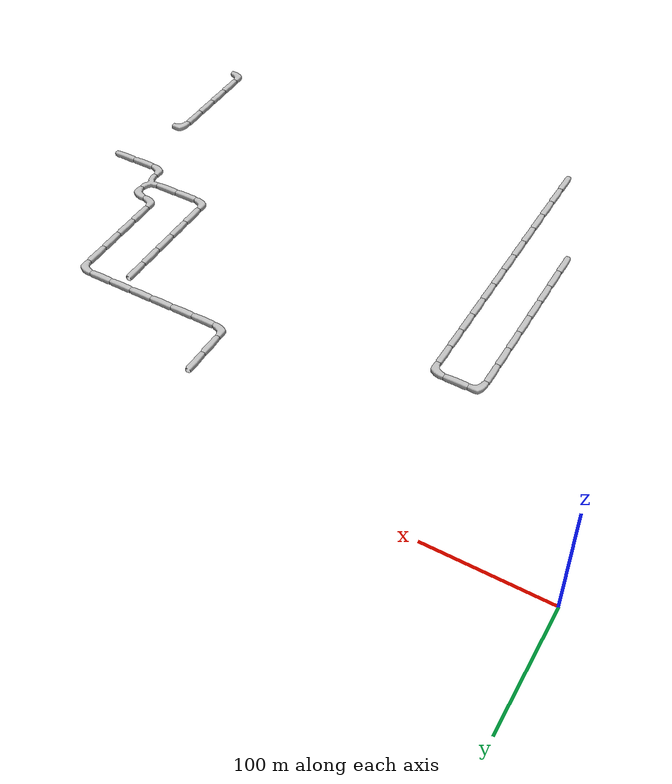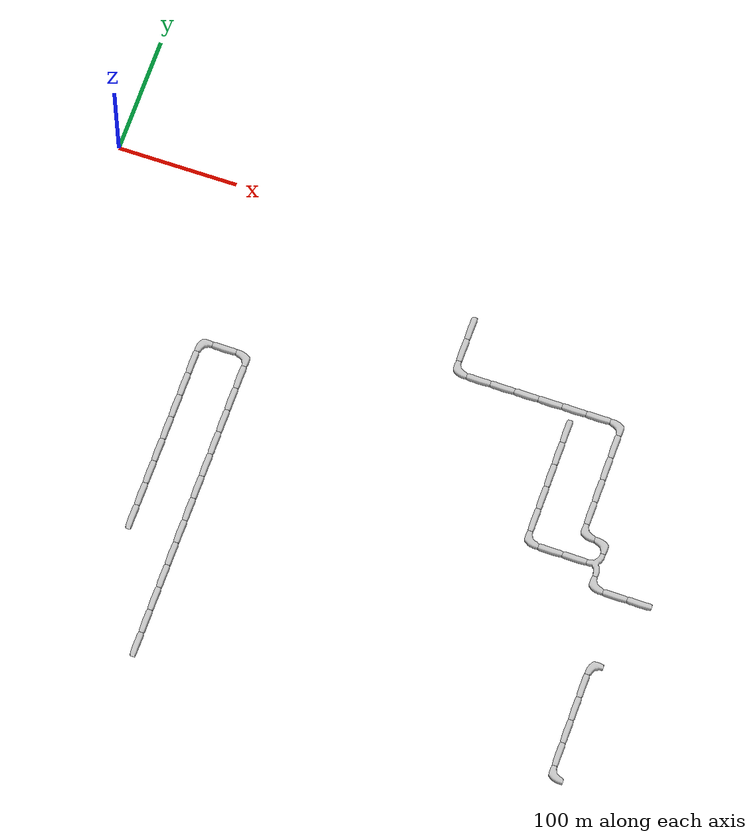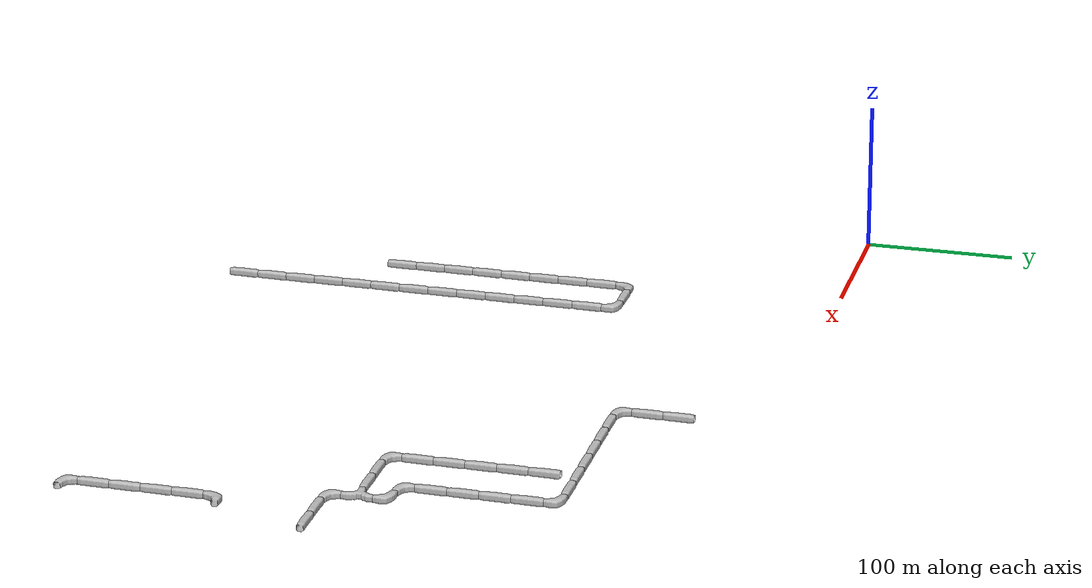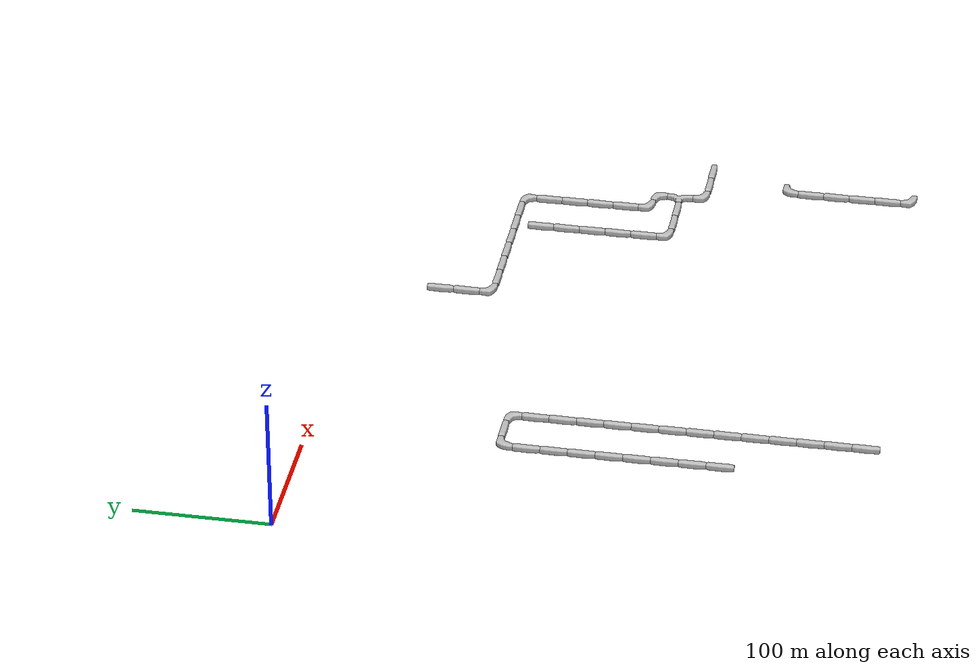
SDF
<sdf version="1.6">
 <world name="cave_32000_2">
  <include>
   <static>true</static>
   <name>cave_16_-3</name>
   <pose>320 -60 0 0 0 0.0</pose>
   <uri>model://cave_straight_20m</uri>
  </include>
  <include>
   <static>true</static>
   <name>cave_16_-4</name>
   <pose>320 -80 0 0 0 0.0</pose>
   <uri>model://cave_straight_20m</uri>
  </include>
  <include>
   <static>true</static>
   <name>cave_16_-5</name>
   <pose>320 -100 0 0 0 0.0</pose>
   <uri>model://cave_L_20m</uri>
  </include>
  <include>
   <static>true</static>
   <name>cave_17_-5</name>
   <pose>340 -100 0 0 0 1.5707963267948966</pose>
   <uri>model://cave_straight_20m</uri>
  </include>
  <include>
   <static>true</static>
   <name>cave_18_-5</name>
   <pose>360 -100 0 0 0 1.5707963267948966</pose>
   <uri>model://cave_straight_20m</uri>
  </include>
  <include>
   <static>true</static>
   <name>cave_19_-5</name>
   <pose>380 -100 0 0 0 1.5707963267948966</pose>
   <uri>model://cave_straight_20m</uri>
  </include>
  <include>
   <static>true</static>
   <name>cave_20_-5</name>
   <pose>400 -100 0 0 0 1.5707963267948966</pose>
   <uri>model://cave_straight_20m</uri>
  </include>
  <include>
   <static>true</static>
   <name>cave_21_-5</name>
   <pose>420 -100 0 0 0 1.5707963267948966</pose>
   <uri>model://cave_straight_20m</uri>
  </include>
  <include>
   <static>true</static>
   <name>cave_22_-5</name>
   <pose>440 -100 0 0 0 1.5707963267948966</pose>
   <uri>model://cave_straight_20m</uri>
  </include>
  <include>
   <static>true</static>
   <name>cave_23_-5</name>
   <pose>460 -100 0 0 0 3.141592653589793</pose>
   <uri>model://cave_L_20m</uri>
  </include>
  <include>
   <static>true</static>
   <name>cave_23_-6</name>
   <pose>460 -120 0 0 0 0.0</pose>
   <uri>model://cave_straight_20m</uri>
  </include>
  <include>
   <static>true</static>
   <name>cave_23_-7</name>
   <pose>460 -140 0 0 0 0.0</pose>
   <uri>model://cave_straight_20m</uri>
  </include>
  <include>
   <static>true</static>
   <name>cave_23_-8</name>
   <pose>460 -160 0 0 0 0.0</pose>
   <uri>model://cave_straight_20m</uri>
  </include>
  <include>
   <static>true</static>
   <name>cave_23_-9</name>
   <pose>460 -180 0 0 0 0.0</pose>
   <uri>model://cave_straight_20m</uri>
  </include>
  <include>
   <static>true</static>
   <name>cave_23_-10</name>
   <pose>460 -200 0 0 0 0.0</pose>
   <uri>model://cave_L_20m</uri>
  </include>
  <include>
   <static>true</static>
   <name>cave_24_-10</name>
   <pose>480 -200 0 0 0 3.141592653589793</pose>
   <uri>model://cave_L_20m</uri>
  </include>
  <include>
   <static>true</static>
   <name>cave_24_-11</name>
   <pose>480 -220 0 0 0 1.5707963267948966</pose>
   <uri>model://cave_3way_20m</uri>
  </include>
  <include>
   <static>true</static>
   <name>cave_24_-12</name>
   <pose>480 -240 0 0 0 0.0</pose>
   <uri>model://cave_L_20m</uri>
  </include>
  <include>
   <static>true</static>
   <name>cave_25_-12</name>
   <pose>500 -240 0 0 0 1.5707963267948966</pose>
   <uri>model://cave_straight_20m</uri>
  </include>
  <include>
   <static>true</static>
   <name>cave_26_-12</name>
   <pose>520 -240 0 0 0 1.5707963267948966</pose>
   <uri>model://cave_straight_20m</uri>
  </include>
  <include>
   <static>true</static>
   <name>cave_25_-20</name>
   <pose>500 -400 0 0 0 0.0</pose>
   <uri>model://cave_L_20m</uri>
  </include>
  <include>
   <static>true</static>
   <name>cave_25_-19</name>
   <pose>500 -380 0 0 0 0.0</pose>
   <uri>model://cave_straight_20m</uri>
  </include>
  <include>
   <static>true</static>
   <name>cave_25_-18</name>
   <pose>500 -360 0 0 0 0.0</pose>
   <uri>model://cave_straight_20m</uri>
  </include>
  <include>
   <static>true</static>
   <name>cave_25_-17</name>
   <pose>500 -340 0 0 0 0.0</pose>
   <uri>model://cave_straight_20m</uri>
  </include>
  <include>
   <static>true</static>
   <name>cave_25_-16</name>
   <pose>500 -320 0 0 0 0.0</pose>
   <uri>model://cave_straight_20m</uri>
  </include>
  <include>
   <static>true</static>
   <name>cave_25_-15</name>
   <pose>500 -300 0 0 0 -1.5707963267948966</pose>
   <uri>model://cave_L_20m</uri>
  </include>
  <include>
   <static>true</static>
   <name>cave_23_-11</name>
   <pose>460 -220 0 0 0 1.5707963267948966</pose>
   <uri>model://cave_straight_20m</uri>
  </include>
  <include>
   <static>true</static>
   <name>cave_22_-11</name>
   <pose>440 -220 0 0 0 1.5707963267948966</pose>
   <uri>model://cave_straight_20m</uri>
  </include>
  <include>
   <static>true</static>
   <name>cave_21_-11</name>
   <pose>420 -220 0 0 0 0.0</pose>
   <uri>model://cave_L_20m</uri>
  </include>
  <include>
   <static>true</static>
   <name>cave_21_-10</name>
   <pose>420 -200 0 0 0 0.0</pose>
   <uri>model://cave_straight_20m</uri>
  </include>
  <include>
   <static>true</static>
   <name>cave_21_-9</name>
   <pose>420 -180 0 0 0 0.0</pose>
   <uri>model://cave_straight_20m</uri>
  </include>
  <include>
   <static>true</static>
   <name>cave_21_-8</name>
   <pose>420 -160 0 0 0 0.0</pose>
   <uri>model://cave_straight_20m</uri>
  </include>
  <include>
   <static>true</static>
   <name>cave_21_-7</name>
   <pose>420 -140 0 0 0 0.0</pose>
   <uri>model://cave_straight_20m</uri>
  </include>
  <include>
   <static>true</static>
   <name>cave_21_-6</name>
   <pose>420 -120 0 0 0 0.0</pose>
   <uri>model://cave_straight_20m</uri>
  </include>
  <include>
   <static>true</static>
   <name>cave_8_-20</name>
   <pose>160 -400 0 0 0 0.0</pose>
   <uri>model://cave_straight_20m</uri>
  </include>
  <include>
   <static>true</static>
   <name>cave_8_-19</name>
   <pose>160 -380 0 0 0 0.0</pose>
   <uri>model://cave_straight_20m</uri>
  </include>
  <include>
   <static>true</static>
   <name>cave_8_-18</name>
   <pose>160 -360 0 0 0 0.0</pose>
   <uri>model://cave_straight_20m</uri>
  </include>
  <include>
   <static>true</static>
   <name>cave_8_-17</name>
   <pose>160 -340 0 0 0 0.0</pose>
   <uri>model://cave_straight_20m</uri>
  </include>
  <include>
   <static>true</static>
   <name>cave_8_-16</name>
   <pose>160 -320 0 0 0 0.0</pose>
   <uri>model://cave_straight_20m</uri>
  </include>
  <include>
   <static>true</static>
   <name>cave_8_-15</name>
   <pose>160 -300 0 0 0 0.0</pose>
   <uri>model://cave_straight_20m</uri>
  </include>
  <include>
   <static>true</static>
   <name>cave_8_-14</name>
   <pose>160 -280 0 0 0 0.0</pose>
   <uri>model://cave_straight_20m</uri>
  </include>
  <include>
   <static>true</static>
   <name>cave_8_-13</name>
   <pose>160 -260 0 0 0 0.0</pose>
   <uri>model://cave_straight_20m</uri>
  </include>
  <include>
   <static>true</static>
   <name>cave_8_-12</name>
   <pose>160 -240 0 0 0 0.0</pose>
   <uri>model://cave_straight_20m</uri>
  </include>
  <include>
   <static>true</static>
   <name>cave_8_-11</name>
   <pose>160 -220 0 0 0 0.0</pose>
   <uri>model://cave_straight_20m</uri>
  </include>
  <include>
   <static>true</static>
   <name>cave_8_-10</name>
   <pose>160 -200 0 0 0 0.0</pose>
   <uri>model://cave_straight_20m</uri>
  </include>
  <include>
   <static>true</static>
   <name>cave_8_-9</name>
   <pose>160 -180 0 0 0 0.0</pose>
   <uri>model://cave_straight_20m</uri>
  </include>
  <include>
   <static>true</static>
   <name>cave_8_-8</name>
   <pose>160 -160 0 0 0 0.0</pose>
   <uri>model://cave_straight_20m</uri>
  </include>
  <include>
   <static>true</static>
   <name>cave_8_-7</name>
   <pose>160 -140 0 0 0 3.141592653589793</pose>
   <uri>model://cave_L_20m</uri>
  </include>
  <include>
   <static>true</static>
   <name>cave_7_-7</name>
   <pose>140 -140 0 0 0 1.5707963267948966</pose>
   <uri>model://cave_straight_20m</uri>
  </include>
  <include>
   <static>true</static>
   <name>cave_6_-7</name>
   <pose>120 -140 0 0 0 -1.5707963267948966</pose>
   <uri>model://cave_L_20m</uri>
  </include>
  <include>
   <static>true</static>
   <name>cave_6_-8</name>
   <pose>120 -160 0 0 0 0.0</pose>
   <uri>model://cave_straight_20m</uri>
  </include>
  <include>
   <static>true</static>
   <name>cave_6_-9</name>
   <pose>120 -180 0 0 0 0.0</pose>
   <uri>model://cave_straight_20m</uri>
  </include>
  <include>
   <static>true</static>
   <name>cave_6_-10</name>
   <pose>120 -200 0 0 0 0.0</pose>
   <uri>model://cave_straight_20m</uri>
  </include>
  <include>
   <static>true</static>
   <name>cave_6_-11</name>
   <pose>120 -220 0 0 0 0.0</pose>
   <uri>model://cave_straight_20m</uri>
  </include>
  <include>
   <static>true</static>
   <name>cave_6_-12</name>
   <pose>120 -240 0 0 0 0.0</pose>
   <uri>model://cave_straight_20m</uri>
  </include>
  <include>
   <static>true</static>
   <name>cave_6_-13</name>
   <pose>120 -260 0 0 0 0.0</pose>
   <uri>model://cave_straight_20m</uri>
  </include>
  <include>
   <static>true</static>
   <name>cave_6_-14</name>
   <pose>120 -280 0 0 0 0.0</pose>
   <uri>model://cave_straight_20m</uri>
  </include>
  <include>
   <static>true</static>
   <name>cave_6_-15</name>
   <pose>120 -300 0 0 0 0.0</pose>
   <uri>model://cave_straight_20m</uri>
  </include>
 </world>
</sdf>
